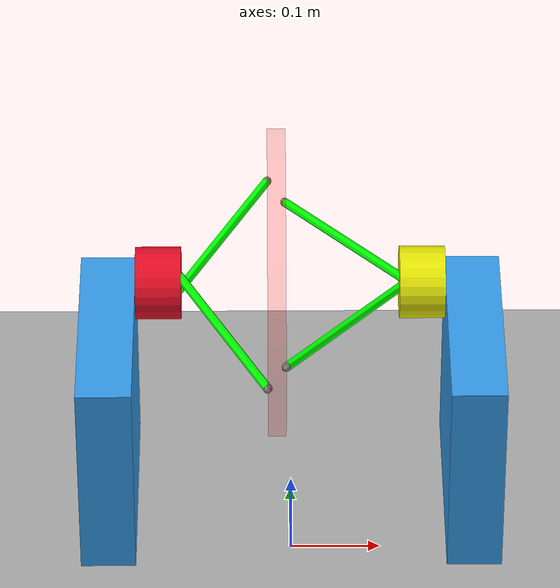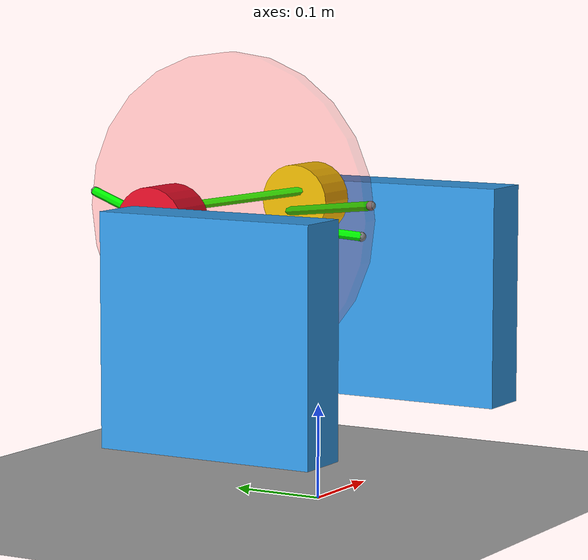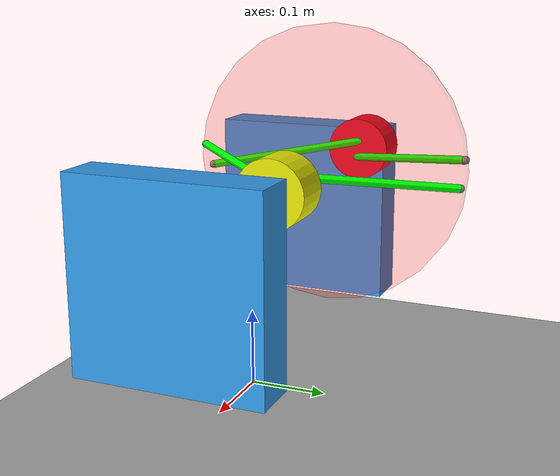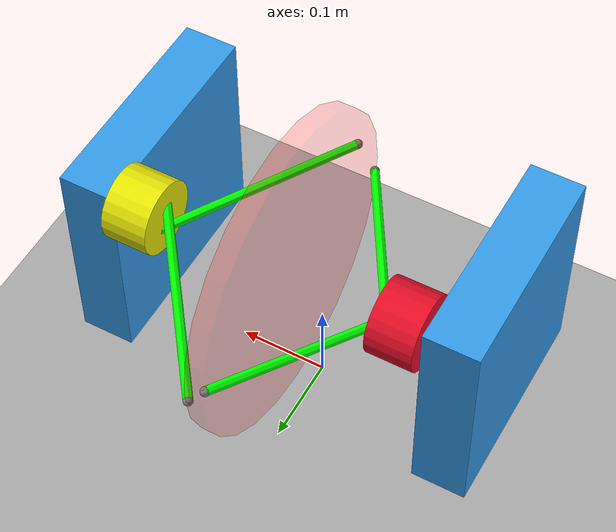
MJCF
<mujoco model="single_actuator">
    <option timestep="0.001"/>
    <size njmax="200" nconmax="100"/>

    <asset>
        <texture name="grid" type="2d" builtin="checker" width="300" height="300"
             rgb1="0.8 0.8 0.8" rgb2="0.5 0.5 0.5" mark="edge" markrgb="0.2 0.2 0.2"/>
        <material name="gridmat" texture="grid" texrepeat="5 5" reflectance="0.1"/>
    </asset>

    <worldbody>
        <geom name="floor" type="plane" size="5 5 0.1" material="gridmat" friction="0.2 0.02 0.01"/>

        <body name="block_a" pos="-0.2 0 0.2">
            <!-- Block A -->
            <joint name="blocka_slide" type="slide" axis="-1 0 0"/>
            <inertial pos="0.04 0 0" mass="2.4" diaginertia="0.001 0.01 0.01"/>
            <geom type="box" size="0.03 0.12 0.12" mass="2.4" friction="0.2 0.02 0.01" rgba="0.2 0.6 0.9 1"/>

            <!-- Cylinder 1 A -->
            <body name="cylinder1a" pos="0.03 0.10 0.10">
                <inertial pos="0.035 0 0" mass="0.1" diaginertia="0.0001 0.0002 0.0002"/>
                <joint name="cw_cont_1a_top" type="hinge" axis="1 0 0" limited="true" range="0 3.14"/>
                <geom name="cylinder1a_con" type="cylinder" fromto="0 0 0 0.05 0 0" size="0.04" rgba="0.9 0.05 0.15 1" />

                <site name="siteM1a1" pos="0.03 0.03 0.015"/>
                <site name="siteM1a2" pos="0.03 -0.03 -0.015"/>
            </body>
            <!-- Disc 1B -->
            <body name="disc1b" pos="0.175 0.10 0.10">
                <inertial pos="0.015 0 0" mass="0.1" diaginertia="0.0001 0.000225 0.000225"/>
                <geom name="disc1b_con" type="cylinder" fromto="0 0 0 0.02 0 0" size="0.17" rgba="1 0 0 0.1" contype="0" conaffinity="0"/>

                <joint name="disc1b_hinge" type="hinge" axis="1 0 0"/>
                <site name="siteM1b1" pos="0 -0.165 -0.015"/>
                <site name="siteM1b2" pos="0 0.165 0.015"/>

                <site name="siteM1b3" pos="0.02 -0.165 0.015"/>
                <site name="siteM1b4" pos="0.02 0.165 -0.015"/>
            </body>
        </body>

        <!-- Block B -->
        <body name="block_b" pos="0.2 0 0.2">
        <joint name="blockb_slide" type="slide" axis="1 0 0"/>
        <inertial pos="-0.04 0 0" mass="2.4" diaginertia="0.001 0.01 0.01"/>
        <geom type="box" size="0.03 0.12 0.12" mass="2.4" friction="0.2 0.02 0.01" rgba="0.2 0.6 0.9 1"/>

        <!-- Cylinder 1 C-->
            <body name="cylinder1c" pos="-0.03 0.10 0.10">
                <inertial pos="-0.035 0 0" mass="0.1" diaginertia="0.0001 0.0002 0.0002"/>
                <joint name="cw_ext_1c_top" type="hinge" axis="1 0 0" limited="true" range="-3.14 0"/>
                <geom name="cylinder1c_con" type="cylinder" fromto="0 0 0 -0.05 0 0" size="0.04" rgba="0.9 0.9 0.02 1"/>
                <site name="siteM1c1" pos="-0.03 0.03 -0.015"/>
                <site name="siteM1c2" pos="-0.03 -0.03 0.015"/>
            </body>
        </body>
    </worldbody>

    <actuator>
        <position name="spring1a_motor" joint="cw_cont_1a_top" kp="10" ctrlrange="0 3.14"/>
        <position name="spring1c_motor" joint="cw_ext_1c_top" kp="10" ctrlrange="-3.14 0"/>
    </actuator>

    <tendon>
        <spatial name="inter1a1" width="0.005" rgba="0 1 0 1" stiffness="3000" damping="15">
            <site site="siteM1a1"/>
            <site site="siteM1b1"/>
        </spatial>
        <spatial name="inter1a2" width="0.005" rgba="0 1 0 1" stiffness="3000" damping="15">
            <site site="siteM1a2"/>
            <site site="siteM1b2"/>
        </spatial>
        <spatial name="inter1b1" width="0.005" rgba="0 1 0 1" stiffness="3000" damping="15">
            <site site="siteM1b3"/>
            <site site="siteM1c1"/>
        </spatial>
        <spatial name="inter1b2" width="0.005" rgba="0 1 0 1" stiffness="3000" damping="15">
            <site site="siteM1b4"/>
            <site site="siteM1c2"/>
        </spatial>
    </tendon>

</mujoco>
